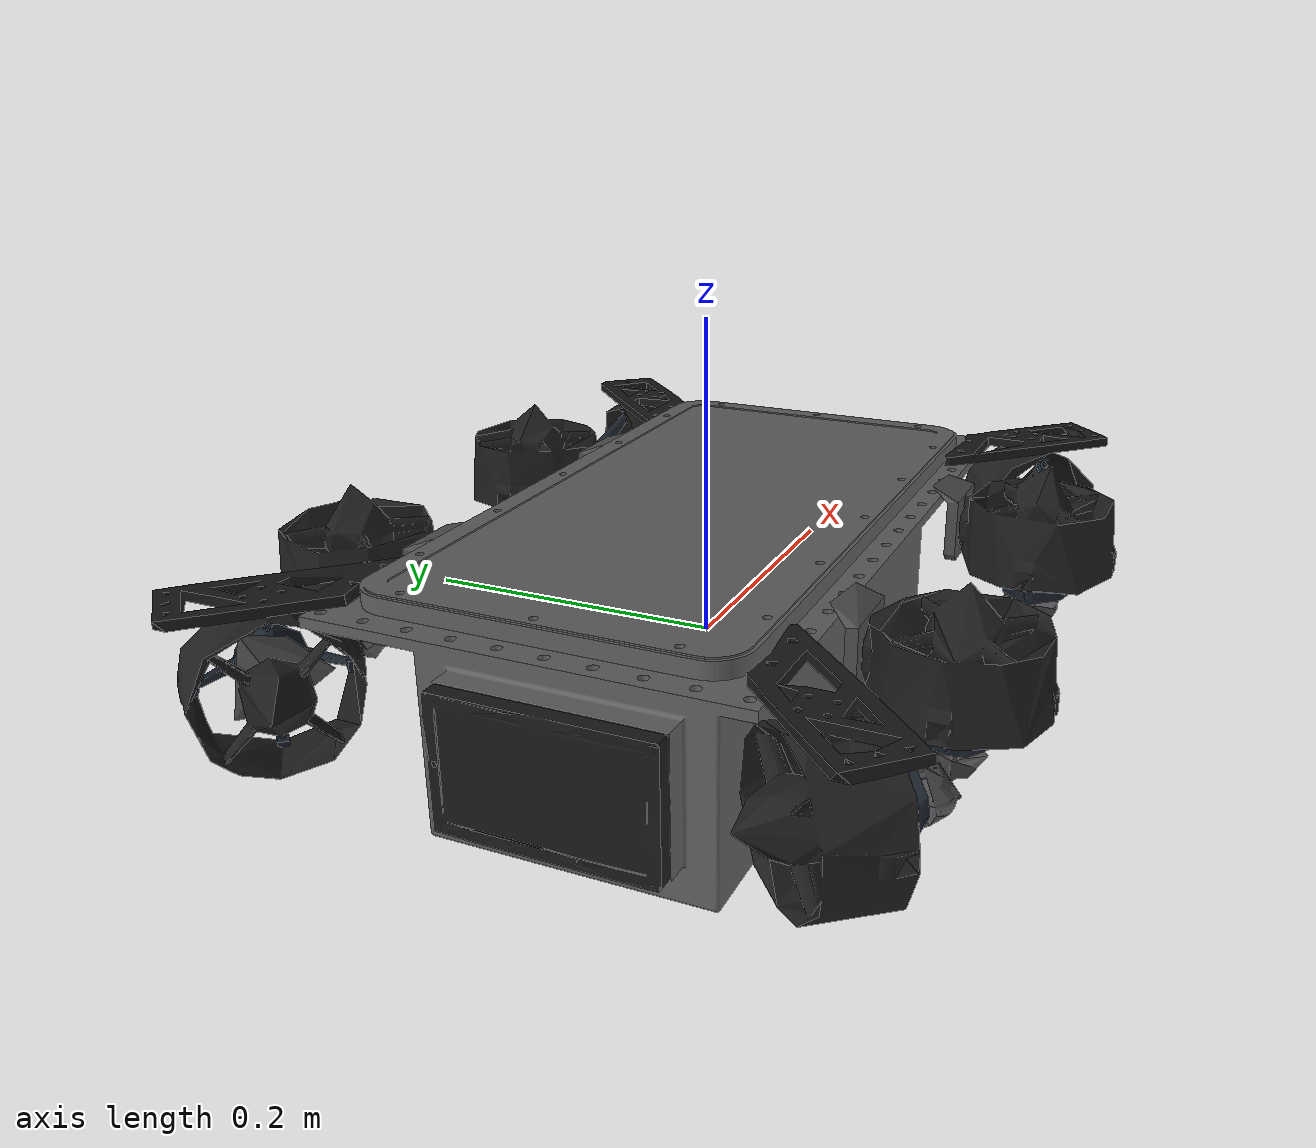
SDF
<?xml version='1.0' encoding='UTF-8'?>
<!-- 1.11, not the 1.6 bluerov2_gz uses: //inertial/fluid_added_mass arrived in
     1.10 and is silently dropped by the converter from anything older. -->
<sdf version="1.11">
  <model name="dubomini">
    <pose>0 0 0 0 0 0</pose>

    <link name="base_link">
      <inertial>
        <pose>0.0 0.0 0.0 0 0 0</pose>
        <mass>14.6</mass>
        <inertia>
          <ixx>0.28</ixx>
          <ixy>0</ixy>
          <ixz>0</ixz>
          <iyy>0.35</iyy>
          <iyz>0</iyz>
          <izz>0.52</izz>
        </inertia>

        <fluid_added_mass>
          <xx>8.5697</xx>
          <yy>10.8124</yy>
          <zz>64.5087</zz>
          <pp>0.2937</pp>
          <qq>0.6185</qq>
          <rr>0.0718</rr>
        </fluid_added_mass>
      </inertial>

      <visual name="frame_visual">
        <!-- the four long rails and plates -- the vehicle silhouette -->
        <geometry>
          <mesh>
            <uri>model://dubomini/meshes/dubomini_frame.dae</uri>
          </mesh>
        </geometry>
        <material>
          <ambient>0.375 0.375 0.38 1</ambient>
          <diffuse>0.375 0.375 0.38 1</diffuse>
          <specular>0.22 0.22 0.22 1</specular>
          <emissive>0.0375 0.0375 0.038 1</emissive>
        </material>
      </visual>

      <visual name="enclosure_visual">
        <!-- the sealed electronics box: GLOSS black, high specular -->
        <geometry>
          <mesh>
            <uri>model://dubomini/meshes/dubomini_enclosure.dae</uri>
          </mesh>
        </geometry>
        <material>
          <ambient>0.03 0.03 0.034 1</ambient>
          <diffuse>0.03 0.03 0.034 1</diffuse>
          <specular>0.65 0.65 0.65 1</specular>
          <emissive>0.003 0.003 0.0034 1</emissive>
        </material>
      </visual>

      <visual name="body_visual">
        <!-- pressure cylinders and mounts -->
        <geometry>
          <mesh>
            <uri>model://dubomini/meshes/dubomini_body.dae</uri>
          </mesh>
        </geometry>
        <material>
          <ambient>0.1 0.1 0.11 1</ambient>
          <diffuse>0.1 0.1 0.11 1</diffuse>
          <specular>0.35 0.35 0.35 1</specular>
          <emissive>0.01 0.01 0.011 1</emissive>
        </material>
      </visual>

      <visual name="duct_visual">
        <!-- the eight T200 ducts, with the blue-teal props inside them -->
        <geometry>
          <mesh>
            <uri>model://dubomini/meshes/dubomini_duct.dae</uri>
          </mesh>
        </geometry>
        <material>
          <ambient>0.115 0.115 0.12 1</ambient>
          <diffuse>0.115 0.115 0.12 1</diffuse>
          <specular>0.3 0.3 0.3 1</specular>
          <emissive>0.0115 0.0115 0.012 1</emissive>
        </material>
      </visual>

      <visual name="prop_visual">
        <!-- the eight propellers, the one coloured thing on a black vehicle -->
        <geometry>
          <mesh>
            <uri>model://dubomini/meshes/dubomini_prop.dae</uri>
          </mesh>
        </geometry>
        <material>
          <ambient>0.105 0.135 0.175 1</ambient>
          <diffuse>0.105 0.135 0.175 1</diffuse>
          <specular>0.4 0.4 0.4 1</specular>
          <emissive>0.0105 0.0135 0.0175 1</emissive>
        </material>
      </visual>

      <visual name="fitting_visual">
        <!-- brackets, clamps and the bare-metal camera bezels -->
        <geometry>
          <mesh>
            <uri>model://dubomini/meshes/dubomini_fitting.dae</uri>
          </mesh>
        </geometry>
        <material>
          <ambient>0.3 0.3 0.31 1</ambient>
          <diffuse>0.3 0.3 0.31 1</diffuse>
          <specular>0.45 0.45 0.45 1</specular>
          <emissive>0.03 0.03 0.031 1</emissive>
        </material>
      </visual>

      <collision name="base_link_collision">
        <pose>0.0 0.0 0.01 0 0 0</pose>
        <geometry>
          <box>
            <size>0.5459 0.4702 0.057659</size>
          </box>
        </geometry>
      </collision>

      <collision name="base_link_hull_collision">
        <geometry>
          <mesh optimization="convex_decomposition">
            <convex_decomposition>
              <max_convex_hulls>16</max_convex_hulls>
            </convex_decomposition>
            <uri>model://dubomini/meshes/dubomini_hull.stl</uri>
          </mesh>
        </geometry>
      </collision>

      <!-- IMU gyro and accel are consumed by ArduSub over the JSON link. The
           1000 Hz rate must be at least the SITL loop rate. -->
      <sensor name="imu_sensor" type="imu">
        <!-- Gazebo body frame (x-forward, y-left, z-up)
             to ArduPilot body frame (x-forward, y-right, z-down) -->
        <pose>0 0 0 3.141593 0 0</pose>
        <always_on>1</always_on>
        <update_rate>1000.0</update_rate>
      </sensor>

      <sensor name="dvl" type="custom" gz:type="dvl">
        <!-- Offset to the hull underside; 180 deg roll points the array down. -->
        <pose degrees="true">0.0 0.0 -0.1 0 0 180</pose>
        <always_on>1</always_on>
        <update_rate>8.0</update_rate>
        <topic>dvl/velocity_raw</topic>
        <gz:dvl>
          <type>phased_array</type>
          <arrangement degrees="true">
            <beam id="1">
              <aperture>2</aperture><rotation>45</rotation><tilt>30</tilt>
            </beam>
            <beam>
              <aperture>2</aperture><rotation>135</rotation><tilt>30</tilt>
            </beam>
            <beam>
              <aperture>2</aperture><rotation>-45</rotation><tilt>30</tilt>
            </beam>
            <beam>
              <aperture>2</aperture><rotation>-135</rotation><tilt>30</tilt>
            </beam>
          </arrangement>
          <tracking>
            <bottom_mode>
              <when>best</when>
              <noise type="gaussian">
                <stddev>0.0065</stddev>
              </noise>
              <visualize>false</visualize>
            </bottom_mode>
          </tracking>
          <resolution>0.01</resolution>
          <!-- The SAUVC pool is 1.6 m deep, so the useful altitude band is well
               under a metre: minimum_range matters far more than maximum. -->
          <maximum_range>75.0</maximum_range>
          <minimum_range>0.1</minimum_range>
          <!-- ENU to SFM -->
          <reference_frame>0 0 0 0 0 -1.570796</reference_frame>
        </gz:dvl>
      </sensor>
    </link>

    <link name="front_camera_link">
      <pose>0.2 0.0 0.0 0 0 0</pose>
      <inertial>
        <mass>0.001</mass>
        <inertia>
          <ixx>1e-6</ixx><ixy>0</ixy><ixz>0</ixz>
          <iyy>1e-6</iyy><iyz>0</iyz><izz>1e-6</izz>
        </inertia>
      </inertial>
      <!-- No collision geometry on purpose: a collision here would add displaced
           volume and break the buoyancy budget computed above. -->
      <sensor name="front_camera" type="camera">
        <always_on>1</always_on>
        <update_rate>30.0</update_rate>
        <visualize>false</visualize>
        <topic>front_camera</topic>
        <camera name="front_camera">
          <!-- Without this both cameras default to a bare /camera_info and
               stomp on each other. -->
          <camera_info_topic>front_camera/camera_info</camera_info_topic>
          <horizontal_fov>1.0064</horizontal_fov>
          <image>
            <width>640</width>
            <height>480</height>
            <format>R8G8B8</format>
          </image>
          <clip>
            <near>0.05</near>
            <!-- Stands in for water turbidity; beyond this the pool fades out. -->
            <far>30.0</far>
          </clip>
          <noise>
            <type>gaussian</type>
            <mean>0.0</mean>
            <stddev>0.007</stddev>
          </noise>
          <optical_frame_id>front_camera_link_optical</optical_frame_id>
        </camera>

        <plugin filename="gz-sim-lens-flare-system"
                name="gz::sim::systems::LensFlare">
          <light_name>sun</light_name>
          <scale>0.4</scale>
          <color>1 0.95 0.85</color>
        </plugin>
        <!-- LENSFLARE -->
      </sensor>

      <sensor name="front_range" type="depth_camera">
        <always_on>1</always_on>
        <update_rate>10.0</update_rate>
        <visualize>false</visualize>
        <topic>front_range</topic>
        <camera name="front_range">
          <horizontal_fov>1.0064</horizontal_fov>
          <image>
            <width>320</width>
            <height>240</height>
            <format>R_FLOAT32</format>
          </image>
          <clip>
            <near>0.05</near>
            <far>30.0</far>
          </clip>
          <optical_frame_id>front_camera_link_optical</optical_frame_id>
        </camera>
      </sensor>

      <sensor name="front_boxes" type="boundingbox_camera">
        <always_on>1</always_on>
        <update_rate>30.0</update_rate>
        <visualize>false</visualize>
        <topic>front_boxes</topic>
        <camera name="front_boxes">
          <box_type>visible_2d</box_type>
          <horizontal_fov>1.0064</horizontal_fov>
          <image>
            <width>640</width>
            <height>480</height>
            <format>R8G8B8</format>
          </image>
          <clip>
            <near>0.05</near>
            <far>30.0</far>
          </clip>
          <optical_frame_id>front_camera_link_optical</optical_frame_id>
        </camera>
      </sensor>
    </link>

    <joint name="front_camera_joint" type="fixed">
      <parent>base_link</parent>
      <child>front_camera_link</child>
    </joint>

    <link name="bottom_camera_link">
      <!-- Pitched 90 degrees down. -->
      <pose>0.0 0.0 -0.1 0 1.570796 0</pose>
      <inertial>
        <mass>0.001</mass>
        <inertia>
          <ixx>1e-6</ixx><ixy>0</ixy><ixz>0</ixz>
          <iyy>1e-6</iyy><iyz>0</iyz><izz>1e-6</izz>
        </inertia>
      </inertial>
      <sensor name="bottom_camera" type="camera">
        <always_on>1</always_on>
        <update_rate>30.0</update_rate>
        <visualize>false</visualize>
        <topic>bottom_camera</topic>
        <camera name="bottom_camera">
          <camera_info_topic>bottom_camera/camera_info</camera_info_topic>
          <horizontal_fov>1.0064</horizontal_fov>
          <image>
            <width>640</width>
            <height>480</height>
            <format>R8G8B8</format>
          </image>
          <clip>
            <near>0.05</near>
            <far>30.0</far>
          </clip>
          <noise>
            <type>gaussian</type>
            <mean>0.0</mean>
            <stddev>0.007</stddev>
          </noise>
          <optical_frame_id>bottom_camera_link_optical</optical_frame_id>
        </camera>

        <plugin filename="gz-sim-lens-flare-system"
                name="gz::sim::systems::LensFlare">
          <light_name>sun</light_name>
          <scale>0.4</scale>
          <color>1 0.95 0.85</color>
        </plugin>
        <!-- LENSFLARE -->
      </sensor>

      <sensor name="bottom_range" type="depth_camera">
        <always_on>1</always_on>
        <update_rate>10.0</update_rate>
        <visualize>false</visualize>
        <topic>bottom_range</topic>
        <camera name="bottom_range">
          <horizontal_fov>1.0064</horizontal_fov>
          <image>
            <width>320</width>
            <height>240</height>
            <format>R_FLOAT32</format>
          </image>
          <clip>
            <near>0.05</near>
            <far>30.0</far>
          </clip>
          <optical_frame_id>bottom_camera_link_optical</optical_frame_id>
        </camera>
      </sensor>

      <sensor name="bottom_boxes" type="boundingbox_camera">
        <always_on>1</always_on>
        <update_rate>30.0</update_rate>
        <visualize>false</visualize>
        <topic>bottom_boxes</topic>
        <camera name="bottom_boxes">
          <box_type>visible_2d</box_type>
          <horizontal_fov>1.0064</horizontal_fov>
          <image>
            <width>640</width>
            <height>480</height>
            <format>R8G8B8</format>
          </image>
          <clip>
            <near>0.05</near>
            <far>30.0</far>
          </clip>
          <optical_frame_id>bottom_camera_link_optical</optical_frame_id>
        </camera>
      </sensor>
    </link>

    <joint name="bottom_camera_joint" type="fixed">
      <parent>base_link</parent>
      <child>bottom_camera_link</child>
    </joint>

    <!-- Hydrodynamics: Fossen model, applied by stock gz-sim.
         Also subscribes to /model/dubomini/ocean_current for a
         gz.msgs.Vector3d, which is the hook for pool disturbance injection. -->
    <plugin
        filename="gz-sim-hydrodynamics-system"
        name="gz::sim::systems::Hydrodynamics">
      <link_name>base_link</link_name>
      <water_density>1000.0</water_density>
      <!-- First order stability derivative: -->
      <xU>-13.7</xU>
      <yV>0.0</yV>
      <zW>-33.0</zW>
      <kP>0.0</kP>
      <mQ>-0.8</mQ>
      <nR>0.0</nR>
      <!-- Second order stability derivative: -->
      <xUabsU>-141.0</xUabsU>
      <yVabsV>-217.0</yVabsV>
      <zWabsW>-190.0</zWabsW>
      <kPabsP>-1.192</kPabsP>
      <mQabsQ>-0.47</mQabsQ>
      <nRabsR>-1.5</nRabsR>
    </plugin>

    <!-- Ground truth pose and twist, for scoring and for grading the EKF.
         Debug only; the autonomy stack must never consume this. -->
    <plugin
        filename="gz-sim-odometry-publisher-system"
        name="gz::sim::systems::OdometryPublisher">
      <odom_frame>dubomini/odom</odom_frame>
      <robot_base_frame>dubomini/base_link</robot_base_frame>
      <dimensions>3</dimensions>
      <odom_publish_frequency>50.0</odom_publish_frequency>
    </plugin>

    <link name="thruster1">
      <pose>0.228 -0.1519 0.0479 -1.570796 1.570796 -0.785398</pose>
      <inertial>
        <mass>0.002</mass>
        <inertia>
          <ixx>0.001</ixx>
          <ixy>0</ixy>
          <ixz>0</ixz>
          <iyy>0.001</iyy>
          <iyz>0</iyz>
          <izz>0.001</izz>
        </inertia>
      </inertial>
    </link>

    <link name="thruster2">
      <pose>0.228 0.151 0.0479 -1.570796 1.570796 -2.356194</pose>
      <inertial>
        <mass>0.002</mass>
        <inertia>
          <ixx>0.001</ixx>
          <ixy>0</ixy>
          <ixz>0</ixz>
          <iyy>0.001</iyy>
          <iyz>0</iyz>
          <izz>0.001</izz>
        </inertia>
      </inertial>
    </link>

    <link name="thruster3">
      <pose>-0.225 -0.152 0.0479 -1.570796 1.570796 0.785398</pose>
      <inertial>
        <mass>0.002</mass>
        <inertia>
          <ixx>0.001</ixx>
          <ixy>0</ixy>
          <ixz>0</ixz>
          <iyy>0.001</iyy>
          <iyz>0</iyz>
          <izz>0.001</izz>
        </inertia>
      </inertial>
    </link>

    <link name="thruster4">
      <pose>-0.225 0.1509 0.0479 -1.570796 1.570796 2.356194</pose>
      <inertial>
        <mass>0.002</mass>
        <inertia>
          <ixx>0.001</ixx>
          <ixy>0</ixy>
          <ixz>0</ixz>
          <iyy>0.001</iyy>
          <iyz>0</iyz>
          <izz>0.001</izz>
        </inertia>
      </inertial>
    </link>

    <link name="thruster5">
      <pose>0.1061 -0.1707 0.0618 0 0 0</pose>
      <inertial>
        <mass>0.002</mass>
        <inertia>
          <ixx>0.001</ixx>
          <ixy>0</ixy>
          <ixz>0</ixz>
          <iyy>0.001</iyy>
          <iyz>0</iyz>
          <izz>0.001</izz>
        </inertia>
      </inertial>
    </link>

    <link name="thruster6">
      <pose>0.1061 0.1697 0.0618 0 0 0</pose>
      <inertial>
        <mass>0.002</mass>
        <inertia>
          <ixx>0.001</ixx>
          <ixy>0</ixy>
          <ixz>0</ixz>
          <iyy>0.001</iyy>
          <iyz>0</iyz>
          <izz>0.001</izz>
        </inertia>
      </inertial>
    </link>

    <link name="thruster7">
      <pose>-0.1031 -0.1707 0.0618 0 0 0</pose>
      <inertial>
        <mass>0.002</mass>
        <inertia>
          <ixx>0.001</ixx>
          <ixy>0</ixy>
          <ixz>0</ixz>
          <iyy>0.001</iyy>
          <iyz>0</iyz>
          <izz>0.001</izz>
        </inertia>
      </inertial>
    </link>

    <link name="thruster8">
      <pose>-0.1031 0.1697 0.0618 0 0 0</pose>
      <inertial>
        <mass>0.002</mass>
        <inertia>
          <ixx>0.001</ixx>
          <ixy>0</ixy>
          <ixz>0</ixz>
          <iyy>0.001</iyy>
          <iyz>0</iyz>
          <izz>0.001</izz>
        </inertia>
      </inertial>
    </link>

    <joint name="thruster1_joint" type="revolute">
      <parent>base_link</parent>
      <child>thruster1</child>
      <axis>
        <xyz>0 0 -1</xyz>
      </axis>
    </joint>

    <joint name="thruster2_joint" type="revolute">
      <parent>base_link</parent>
      <child>thruster2</child>
      <axis>
        <xyz>0 0 -1</xyz>
      </axis>
    </joint>

    <joint name="thruster3_joint" type="revolute">
      <parent>base_link</parent>
      <child>thruster3</child>
      <axis>
        <xyz>0 0 -1</xyz>
      </axis>
    </joint>

    <joint name="thruster4_joint" type="revolute">
      <parent>base_link</parent>
      <child>thruster4</child>
      <axis>
        <xyz>0 0 -1</xyz>
      </axis>
    </joint>

    <joint name="thruster5_joint" type="revolute">
      <parent>base_link</parent>
      <child>thruster5</child>
      <axis>
        <xyz>0 0 -1</xyz>
      </axis>
    </joint>

    <joint name="thruster6_joint" type="revolute">
      <parent>base_link</parent>
      <child>thruster6</child>
      <axis>
        <xyz>0 0 -1</xyz>
      </axis>
    </joint>

    <joint name="thruster7_joint" type="revolute">
      <parent>base_link</parent>
      <child>thruster7</child>
      <axis>
        <xyz>0 0 -1</xyz>
      </axis>
    </joint>

    <joint name="thruster8_joint" type="revolute">
      <parent>base_link</parent>
      <child>thruster8</child>
      <axis>
        <xyz>0 0 -1</xyz>
      </axis>
    </joint>

    <plugin
        filename="gz-sim-thruster-system"
        name="gz::sim::systems::Thruster">
      <namespace>dubomini</namespace>
      <joint_name>thruster1_joint</joint_name>
      <fluid_density>1000.0</fluid_density>
      <propeller_diameter>0.1</propeller_diameter>
      <velocity_control>true</velocity_control>
      <use_angvel_cmd>False</use_angvel_cmd>
      <wake_fraction>0.2</wake_fraction>
      <alpha_1>0.02</alpha_1>
      <alpha_2>-0.012</alpha_2>
    </plugin>

    <plugin
        filename="gz-sim-thruster-system"
        name="gz::sim::systems::Thruster">
      <namespace>dubomini</namespace>
      <joint_name>thruster2_joint</joint_name>
      <fluid_density>1000.0</fluid_density>
      <propeller_diameter>0.1</propeller_diameter>
      <velocity_control>true</velocity_control>
      <use_angvel_cmd>False</use_angvel_cmd>
      <wake_fraction>0.2</wake_fraction>
      <alpha_1>0.02</alpha_1>
      <alpha_2>-0.012</alpha_2>
    </plugin>

    <plugin
        filename="gz-sim-thruster-system"
        name="gz::sim::systems::Thruster">
      <namespace>dubomini</namespace>
      <joint_name>thruster3_joint</joint_name>
      <!-- Reverse spin to balance torque -->
      <fluid_density>1000.0</fluid_density>
      <propeller_diameter>0.1</propeller_diameter>
      <velocity_control>true</velocity_control>
      <use_angvel_cmd>False</use_angvel_cmd>
      <wake_fraction>0.2</wake_fraction>
      <alpha_1>0.02</alpha_1>
      <alpha_2>-0.012</alpha_2>
    </plugin>

    <plugin
        filename="gz-sim-thruster-system"
        name="gz::sim::systems::Thruster">
      <namespace>dubomini</namespace>
      <joint_name>thruster4_joint</joint_name>
      <!-- Reverse spin to balance torque -->
      <fluid_density>1000.0</fluid_density>
      <propeller_diameter>0.1</propeller_diameter>
      <velocity_control>true</velocity_control>
      <use_angvel_cmd>False</use_angvel_cmd>
      <wake_fraction>0.2</wake_fraction>
      <alpha_1>0.02</alpha_1>
      <alpha_2>-0.012</alpha_2>
    </plugin>

    <plugin
        filename="gz-sim-thruster-system"
        name="gz::sim::systems::Thruster">
      <namespace>dubomini</namespace>
      <joint_name>thruster5_joint</joint_name>
      <fluid_density>1000.0</fluid_density>
      <propeller_diameter>0.1</propeller_diameter>
      <velocity_control>true</velocity_control>
      <use_angvel_cmd>False</use_angvel_cmd>
      <wake_fraction>0.2</wake_fraction>
      <alpha_1>0.02</alpha_1>
      <alpha_2>-0.012</alpha_2>
    </plugin>

    <plugin
        filename="gz-sim-thruster-system"
        name="gz::sim::systems::Thruster">
      <namespace>dubomini</namespace>
      <joint_name>thruster6_joint</joint_name>
      <!-- Reverse spin to balance torque -->
      <fluid_density>1000.0</fluid_density>
      <propeller_diameter>0.1</propeller_diameter>
      <velocity_control>true</velocity_control>
      <use_angvel_cmd>False</use_angvel_cmd>
      <wake_fraction>0.2</wake_fraction>
      <alpha_1>0.02</alpha_1>
      <alpha_2>-0.012</alpha_2>
    </plugin>

    <plugin
        filename="gz-sim-thruster-system"
        name="gz::sim::systems::Thruster">
      <namespace>dubomini</namespace>
      <joint_name>thruster7_joint</joint_name>
      <!-- Reverse spin to balance torque -->
      <fluid_density>1000.0</fluid_density>
      <propeller_diameter>0.1</propeller_diameter>
      <velocity_control>true</velocity_control>
      <use_angvel_cmd>False</use_angvel_cmd>
      <wake_fraction>0.2</wake_fraction>
      <alpha_1>0.02</alpha_1>
      <alpha_2>-0.012</alpha_2>
    </plugin>

    <plugin
        filename="gz-sim-thruster-system"
        name="gz::sim::systems::Thruster">
      <namespace>dubomini</namespace>
      <joint_name>thruster8_joint</joint_name>
      <fluid_density>1000.0</fluid_density>
      <propeller_diameter>0.1</propeller_diameter>
      <velocity_control>true</velocity_control>
      <use_angvel_cmd>False</use_angvel_cmd>
      <wake_fraction>0.2</wake_fraction>
      <alpha_1>0.02</alpha_1>
      <alpha_2>-0.012</alpha_2>
    </plugin>

    <plugin name="ArduPilotPlugin" filename="libArduPilotPlugin.so">
      <fdm_addr>127.0.0.1</fdm_addr>
      <fdm_port_in>9002</fdm_port_in>
      <connectionTimeoutMaxCount>5</connectionTimeoutMaxCount>
      <lock_step>1</lock_step>

      <!-- Gazebo body frame (x-forward, y-left, z-up)
           to ArduPilot body frame (x-forward, y-right, z-down) -->
      <modelXYZToAirplaneXForwardZDown>0 0 0 3.141593 0 0</modelXYZToAirplaneXForwardZDown>

      <!-- Gazebo world frame (ENU) to ArduPilot world frame (NED) -->
      <gazeboXYZToNED>0 0 0 3.141593 0 1.570796</gazeboXYZToNED>

      <imuName>imu_sensor</imuName>

      <control channel="0">
        <jointName>thruster1_joint</jointName>
        <servo_min>1100</servo_min>
        <servo_max>1900</servo_max>
        <type>COMMAND</type>
        <cmd_topic>/model/dubomini/joint/thruster1_joint/cmd_thrust_linear</cmd_topic>
        <offset>-0.5</offset>
        <multiplier>100</multiplier>
      </control>
      <control channel="1">
        <jointName>thruster2_joint</jointName>
        <servo_min>1100</servo_min>
        <servo_max>1900</servo_max>
        <type>COMMAND</type>
        <cmd_topic>/model/dubomini/joint/thruster2_joint/cmd_thrust_linear</cmd_topic>
        <offset>-0.5</offset>
        <multiplier>100</multiplier>
      </control>
      <control channel="2">
        <jointName>thruster3_joint</jointName>
        <servo_min>1100</servo_min>
        <servo_max>1900</servo_max>
        <type>COMMAND</type>
        <cmd_topic>/model/dubomini/joint/thruster3_joint/cmd_thrust_linear</cmd_topic>
        <offset>-0.5</offset>
        <multiplier>100</multiplier>
      </control>
      <control channel="3">
        <jointName>thruster4_joint</jointName>
        <servo_min>1100</servo_min>
        <servo_max>1900</servo_max>
        <type>COMMAND</type>
        <cmd_topic>/model/dubomini/joint/thruster4_joint/cmd_thrust_linear</cmd_topic>
        <offset>-0.5</offset>
        <multiplier>100</multiplier>
      </control>
      <control channel="4">
        <jointName>thruster5_joint</jointName>
        <servo_min>1100</servo_min>
        <servo_max>1900</servo_max>
        <type>COMMAND</type>
        <cmd_topic>/model/dubomini/joint/thruster5_joint/cmd_thrust_linear</cmd_topic>
        <offset>-0.5</offset>
        <multiplier>100</multiplier>
      </control>
      <control channel="5">
        <jointName>thruster6_joint</jointName>
        <servo_min>1100</servo_min>
        <servo_max>1900</servo_max>
        <type>COMMAND</type>
        <cmd_topic>/model/dubomini/joint/thruster6_joint/cmd_thrust_linear</cmd_topic>
        <offset>-0.5</offset>
        <multiplier>100</multiplier>
      </control>
      <control channel="6">
        <jointName>thruster7_joint</jointName>
        <servo_min>1100</servo_min>
        <servo_max>1900</servo_max>
        <type>COMMAND</type>
        <cmd_topic>/model/dubomini/joint/thruster7_joint/cmd_thrust_linear</cmd_topic>
        <offset>-0.5</offset>
        <multiplier>100</multiplier>
      </control>
      <control channel="7">
        <jointName>thruster8_joint</jointName>
        <servo_min>1100</servo_min>
        <servo_max>1900</servo_max>
        <type>COMMAND</type>
        <cmd_topic>/model/dubomini/joint/thruster8_joint/cmd_thrust_linear</cmd_topic>
        <offset>-0.5</offset>
        <multiplier>100</multiplier>
      </control>
    </plugin>

  </model>
</sdf>
